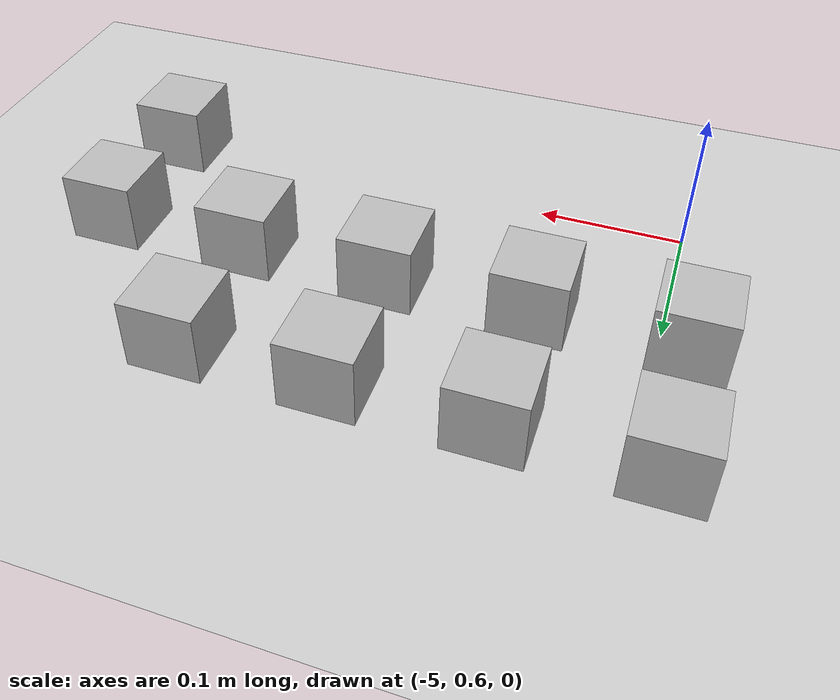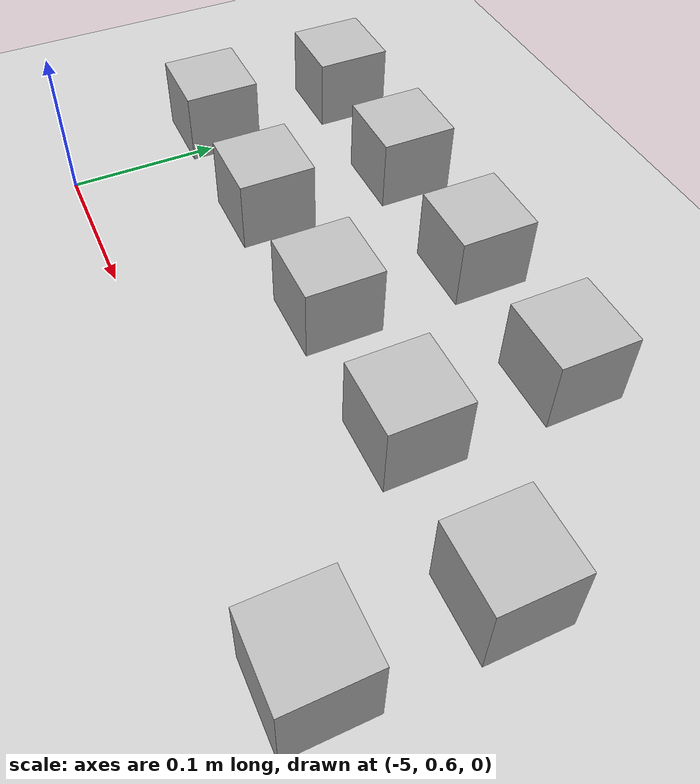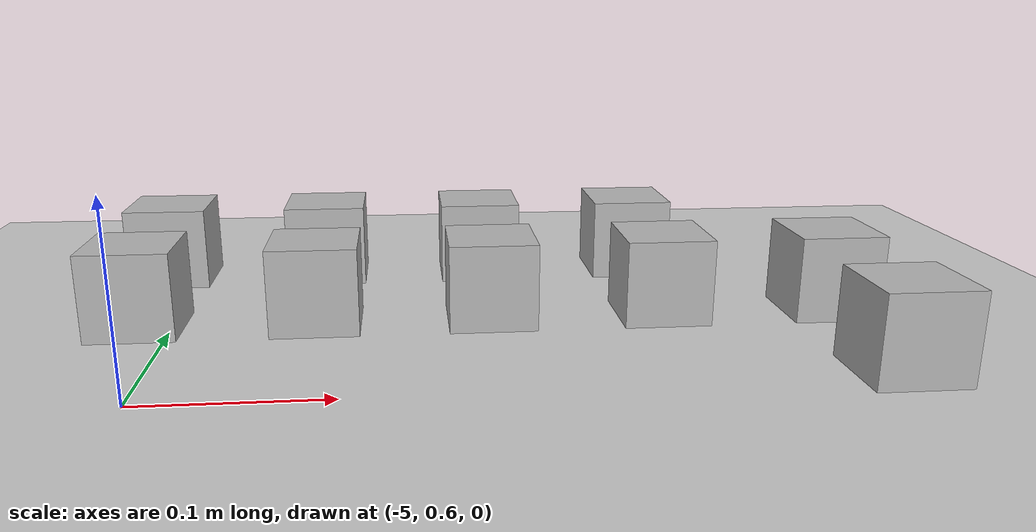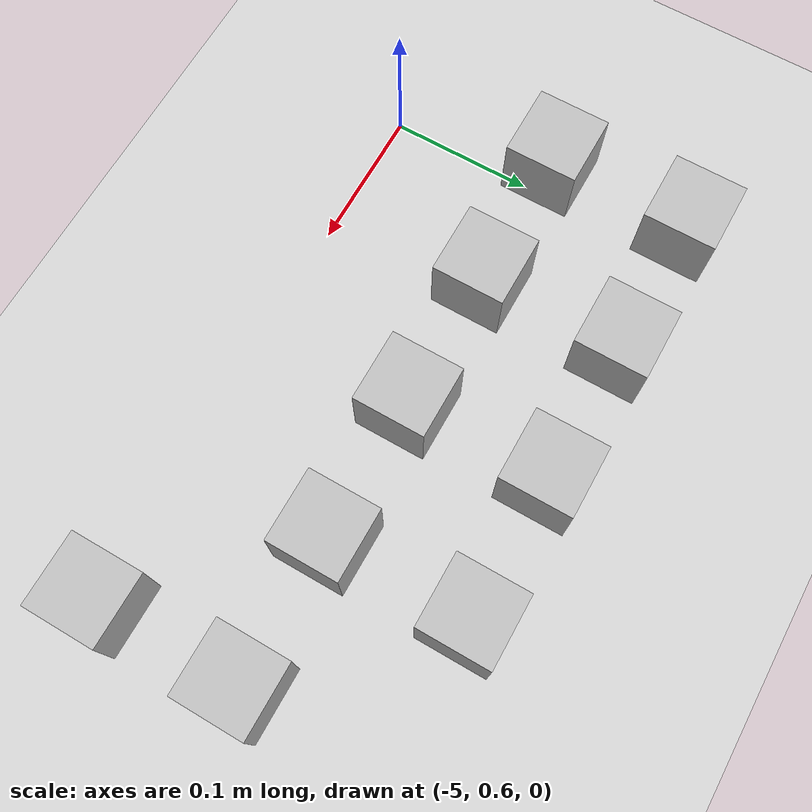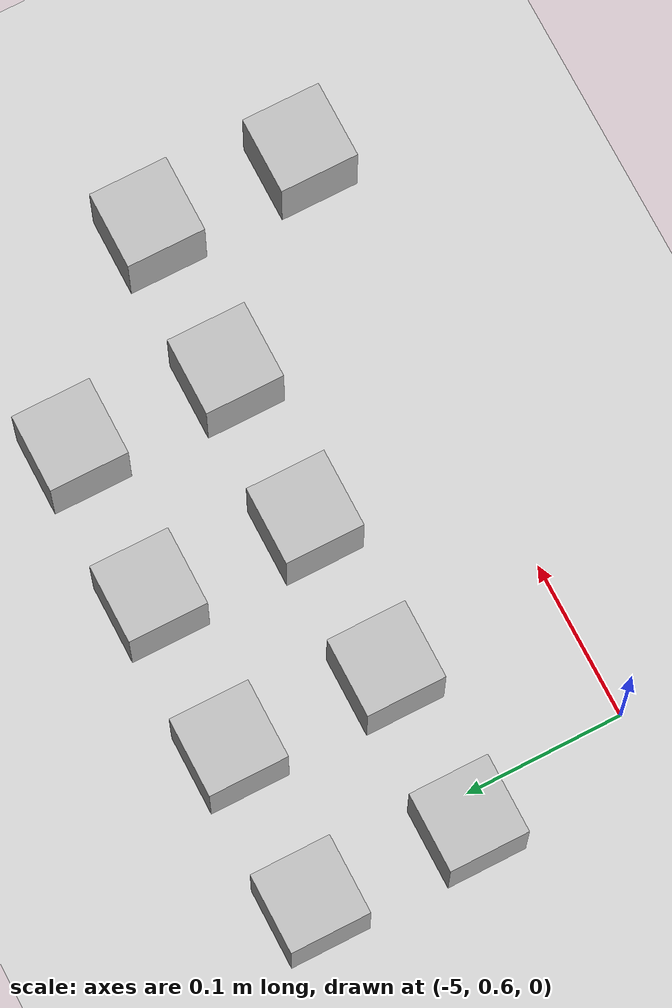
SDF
<sdf version="1.4">
 <world name="default">
  <model name="ground_plane">
   <static>1</static>
   <link name="link">
    <collision name="collision">
     <geometry><plane><normal>0 0 1</normal><size>100 100</size></plane></geometry>
     <surface><friction><ode><mu>100</mu><mu2>50</mu2></ode></friction></surface>
    </collision>
    <visual name="visual">
     <cast_shadows>0</cast_shadows>
     <geometry><plane><normal>0 0 1</normal><size>100 100</size></plane></geometry>
     <material>
      <script><uri>file://media/materials/scripts/gazebo.material</uri><name>Gazebo/Grey</name></script>
     </material>
    </visual>
    <velocity_decay><linear>0</linear><angular>0</angular></velocity_decay>
   </link>
  </model>
  <model name="at12">
   <static>0</static>
   <link name="link">
    <inertial>
     <mass>0.01</mass>
     <inertia><ixx>4e-05</ixx><ixy>0</ixy><ixz>0</ixz><iyy>4e-05</iyy><iyz>0</iyz><izz>4e-05</izz></inertia>
    </inertial>
    <visual name="visual">
     <geometry><box><size>0.05 0.05 0.05</size></box></geometry>
     <material>
      <script>
       <uri>model://at0/materials/scripts</uri>
       <uri>model://at0/materials/textures</uri>
       <name>at0/Diffuse</name>
      </script>
     </material>
    </visual>
    <collision name="collision">
     <geometry><box><size>0.05 0.05 0.05</size></box></geometry>
     <surface><friction><ode><mu>0.8</mu><mu2>0.7</mu2></ode></friction></surface>
    </collision>
    <velocity_decay><linear>0</linear><angular>0</angular></velocity_decay>
   </link>
   <pose>-4.61833 0.609652 0.025 0 -0 0</pose>
  </model>
  <model name="at16">
   <static>0</static>
   <link name="link">
    <inertial>
     <mass>0.01</mass>
     <inertia><ixx>4e-05</ixx><ixy>0</ixy><ixz>0</ixz><iyy>4e-05</iyy><iyz>0</iyz><izz>4e-05</izz></inertia>
    </inertial>
    <visual name="visual">
     <geometry><box><size>0.05 0.05 0.05</size></box></geometry>
     <material>
      <script>
       <uri>model://at0/materials/scripts</uri>
       <uri>model://at0/materials/textures</uri>
       <name>at0/Diffuse</name>
      </script>
     </material>
    </visual>
    <collision name="collision">
     <geometry><box><size>0.05 0.05 0.05</size></box></geometry>
     <surface><friction><ode><mu>0.8</mu><mu2>0.7</mu2></ode></friction></surface>
    </collision>
    <velocity_decay><linear>0</linear><angular>0</angular></velocity_decay>
   </link>
   <pose>-5.01833 0.709652 0.025 0 -0 0</pose>
  </model>
  <model name="at17">
   <static>0</static>
   <link name="link">
    <inertial>
     <mass>0.01</mass>
     <inertia><ixx>4e-05</ixx><ixy>0</ixy><ixz>0</ixz><iyy>4e-05</iyy><iyz>0</iyz><izz>4e-05</izz></inertia>
    </inertial>
    <visual name="visual">
     <geometry><box><size>0.05 0.05 0.05</size></box></geometry>
     <material>
      <script>
       <uri>model://at0/materials/scripts</uri>
       <uri>model://at0/materials/textures</uri>
       <name>at0/Diffuse</name>
      </script>
     </material>
    </visual>
    <collision name="collision">
     <geometry><box><size>0.05 0.05 0.05</size></box></geometry>
     <surface><friction><ode><mu>0.8</mu><mu2>0.7</mu2></ode></friction></surface>
    </collision>
    <velocity_decay><linear>0</linear><angular>0</angular></velocity_decay>
   </link>
   <pose>-4.91833 0.709652 0.025 0 -0 0</pose>
  </model>
  <model name="at18">
   <static>0</static>
   <link name="link">
    <inertial>
     <mass>0.01</mass>
     <inertia><ixx>4e-05</ixx><ixy>0</ixy><ixz>0</ixz><iyy>4e-05</iyy><iyz>0</iyz><izz>4e-05</izz></inertia>
    </inertial>
    <visual name="visual">
     <geometry><box><size>0.05 0.05 0.05</size></box></geometry>
     <material>
      <script>
       <uri>model://at0/materials/scripts</uri>
       <uri>model://at0/materials/textures</uri>
       <name>at0/Diffuse</name>
      </script>
     </material>
    </visual>
    <collision name="collision">
     <geometry><box><size>0.05 0.05 0.05</size></box></geometry>
     <surface><friction><ode><mu>0.8</mu><mu2>0.7</mu2></ode></friction></surface>
    </collision>
    <velocity_decay><linear>0</linear><angular>0</angular></velocity_decay>
   </link>
   <pose>-4.81833 0.709652 0.025 0 -0 0</pose>
  </model>
  <model name="at19">
   <static>0</static>
   <link name="link">
    <inertial>
     <mass>0.01</mass>
     <inertia><ixx>4e-05</ixx><ixy>0</ixy><ixz>0</ixz><iyy>4e-05</iyy><iyz>0</iyz><izz>4e-05</izz></inertia>
    </inertial>
    <visual name="visual">
     <geometry><box><size>0.05 0.05 0.05</size></box></geometry>
     <material>
      <script>
       <uri>model://at0/materials/scripts</uri>
       <uri>model://at0/materials/textures</uri>
       <name>at0/Diffuse</name>
      </script>
     </material>
    </visual>
    <collision name="collision">
     <geometry><box><size>0.05 0.05 0.05</size></box></geometry>
     <surface><friction><ode><mu>0.8</mu><mu2>0.7</mu2></ode></friction></surface>
    </collision>
    <velocity_decay><linear>0</linear><angular>0</angular></velocity_decay>
   </link>
   <pose>-4.71833 0.709652 0.025 0 -0 0</pose>
  </model>
  <model name="at20">
   <static>0</static>
   <link name="link">
    <inertial>
     <mass>0.01</mass>
     <inertia><ixx>4e-05</ixx><ixy>0</ixy><ixz>0</ixz><iyy>4e-05</iyy><iyz>0</iyz><izz>4e-05</izz></inertia>
    </inertial>
    <visual name="visual">
     <geometry><box><size>0.05 0.05 0.05</size></box></geometry>
     <material>
      <script>
       <uri>model://at0/materials/scripts</uri>
       <uri>model://at0/materials/textures</uri>
       <name>at0/Diffuse</name>
      </script>
     </material>
    </visual>
    <collision name="collision">
     <geometry><box><size>0.05 0.05 0.05</size></box></geometry>
     <surface><friction><ode><mu>0.8</mu><mu2>0.7</mu2></ode></friction></surface>
    </collision>
    <velocity_decay><linear>0</linear><angular>0</angular></velocity_decay>
   </link>
   <pose>-4.61833 0.709652 0.025 0 -0 0</pose>
  </model>
  <model name="at24">
   <static>0</static>
   <link name="link">
    <inertial>
     <mass>0.01</mass>
     <inertia><ixx>4e-05</ixx><ixy>0</ixy><ixz>0</ixz><iyy>4e-05</iyy><iyz>0</iyz><izz>4e-05</izz></inertia>
    </inertial>
    <visual name="visual">
     <geometry><box><size>0.05 0.05 0.05</size></box></geometry>
     <material>
      <script>
       <uri>model://at0/materials/scripts</uri>
       <uri>model://at0/materials/textures</uri>
       <name>at0/Diffuse</name>
      </script>
     </material>
    </visual>
    <collision name="collision">
     <geometry><box><size>0.05 0.05 0.05</size></box></geometry>
     <surface><friction><ode><mu>0.8</mu><mu2>0.7</mu2></ode></friction></surface>
    </collision>
    <velocity_decay><linear>0</linear><angular>0</angular></velocity_decay>
   </link>
   <pose>-5.01833 0.809652 0.025 0 -0 0</pose>
  </model>
  <model name="at25">
   <static>0</static>
   <link name="link">
    <inertial>
     <mass>0.01</mass>
     <inertia><ixx>4e-05</ixx><ixy>0</ixy><ixz>0</ixz><iyy>4e-05</iyy><iyz>0</iyz><izz>4e-05</izz></inertia>
    </inertial>
    <visual name="visual">
     <geometry><box><size>0.05 0.05 0.05</size></box></geometry>
     <material>
      <script>
       <uri>model://at0/materials/scripts</uri>
       <uri>model://at0/materials/textures</uri>
       <name>at0/Diffuse</name>
      </script>
     </material>
    </visual>
    <collision name="collision">
     <geometry><box><size>0.05 0.05 0.05</size></box></geometry>
     <surface><friction><ode><mu>0.8</mu><mu2>0.7</mu2></ode></friction></surface>
    </collision>
    <velocity_decay><linear>0</linear><angular>0</angular></velocity_decay>
   </link>
   <pose>-4.91833 0.809652 0.025 0 -0 0</pose>
  </model>
  <model name="at26">
   <static>0</static>
   <link name="link">
    <inertial>
     <mass>0.01</mass>
     <inertia><ixx>4e-05</ixx><ixy>0</ixy><ixz>0</ixz><iyy>4e-05</iyy><iyz>0</iyz><izz>4e-05</izz></inertia>
    </inertial>
    <visual name="visual">
     <geometry><box><size>0.05 0.05 0.05</size></box></geometry>
     <material>
      <script>
       <uri>model://at0/materials/scripts</uri>
       <uri>model://at0/materials/textures</uri>
       <name>at0/Diffuse</name>
      </script>
     </material>
    </visual>
    <collision name="collision">
     <geometry><box><size>0.05 0.05 0.05</size></box></geometry>
     <surface><friction><ode><mu>0.8</mu><mu2>0.7</mu2></ode></friction></surface>
    </collision>
    <velocity_decay><linear>0</linear><angular>0</angular></velocity_decay>
   </link>
   <pose>-4.81833 0.809652 0.025 0 -0 0</pose>
  </model>
  <model name="at27">
   <static>0</static>
   <link name="link">
    <inertial>
     <mass>0.01</mass>
     <inertia><ixx>4e-05</ixx><ixy>0</ixy><ixz>0</ixz><iyy>4e-05</iyy><iyz>0</iyz><izz>4e-05</izz></inertia>
    </inertial>
    <visual name="visual">
     <geometry><box><size>0.05 0.05 0.05</size></box></geometry>
     <material>
      <script>
       <uri>model://at0/materials/scripts</uri>
       <uri>model://at0/materials/textures</uri>
       <name>at0/Diffuse</name>
      </script>
     </material>
    </visual>
    <collision name="collision">
     <geometry><box><size>0.05 0.05 0.05</size></box></geometry>
     <surface><friction><ode><mu>0.8</mu><mu2>0.7</mu2></ode></friction></surface>
    </collision>
    <velocity_decay><linear>0</linear><angular>0</angular></velocity_decay>
   </link>
   <pose>-4.71833 0.809652 0.025 0 -0 0</pose>
  </model>
 </world>
</sdf>
